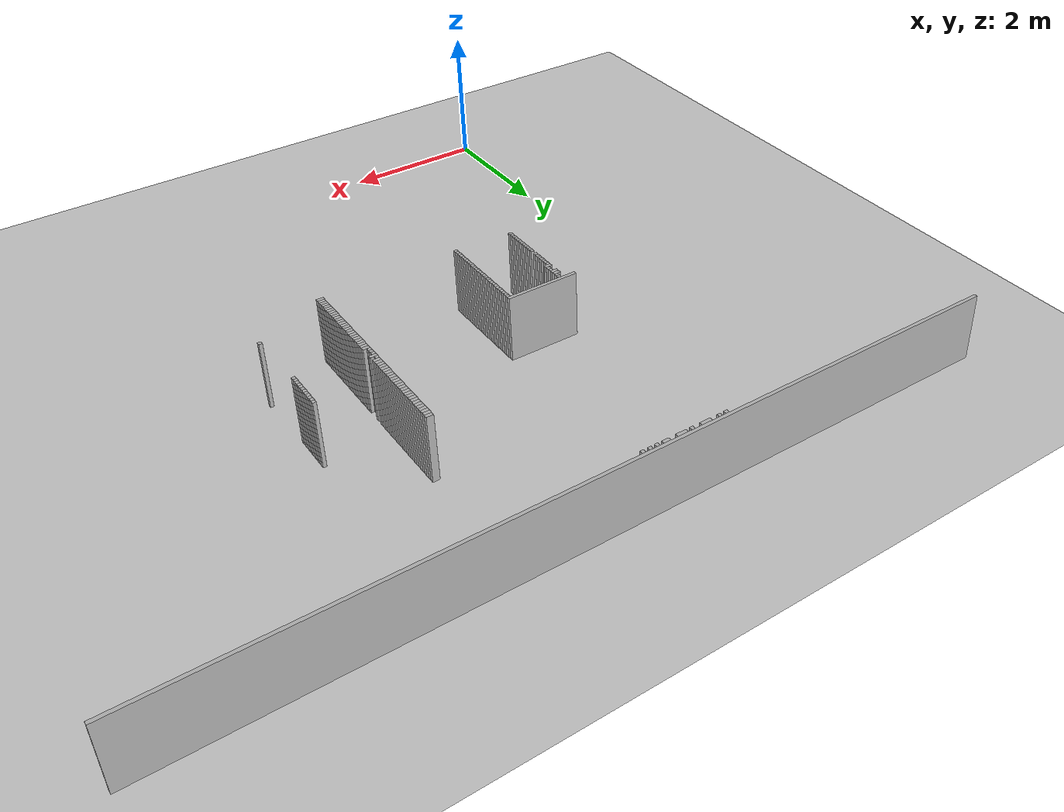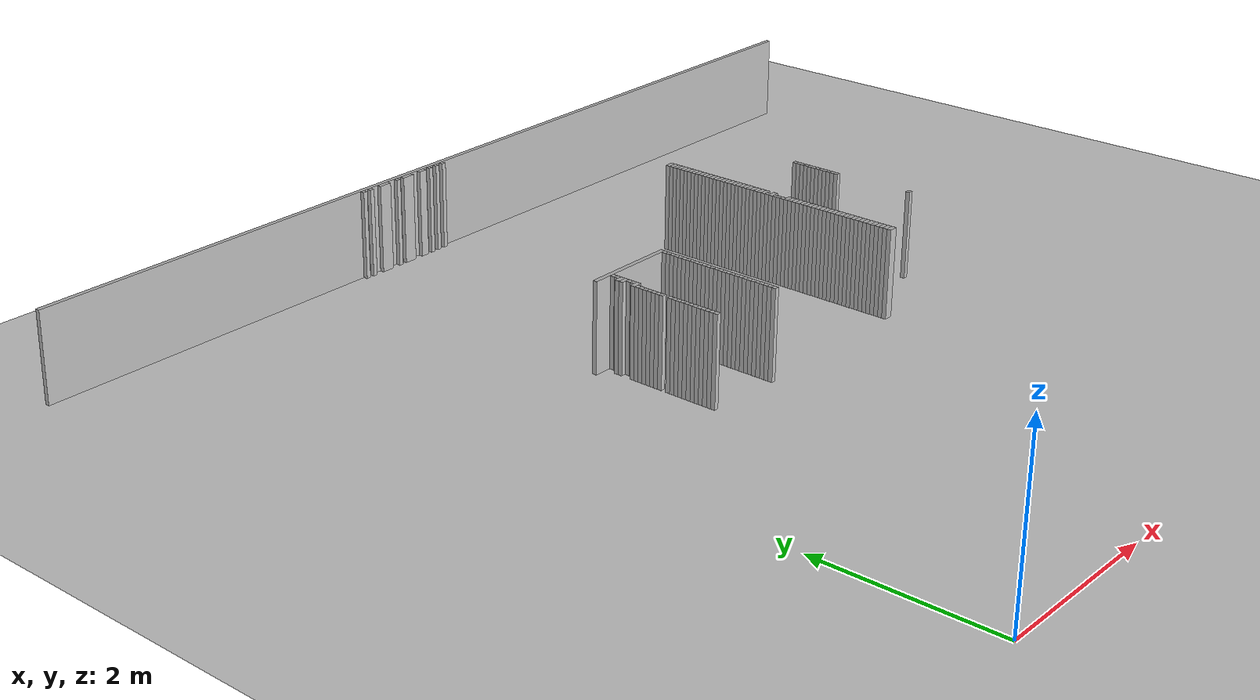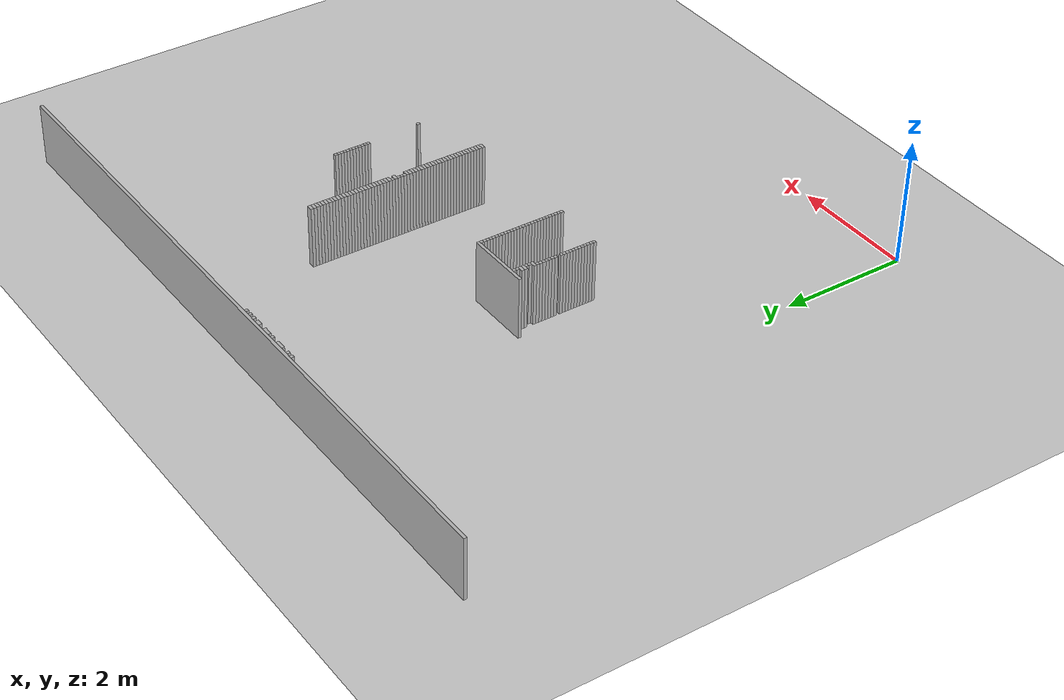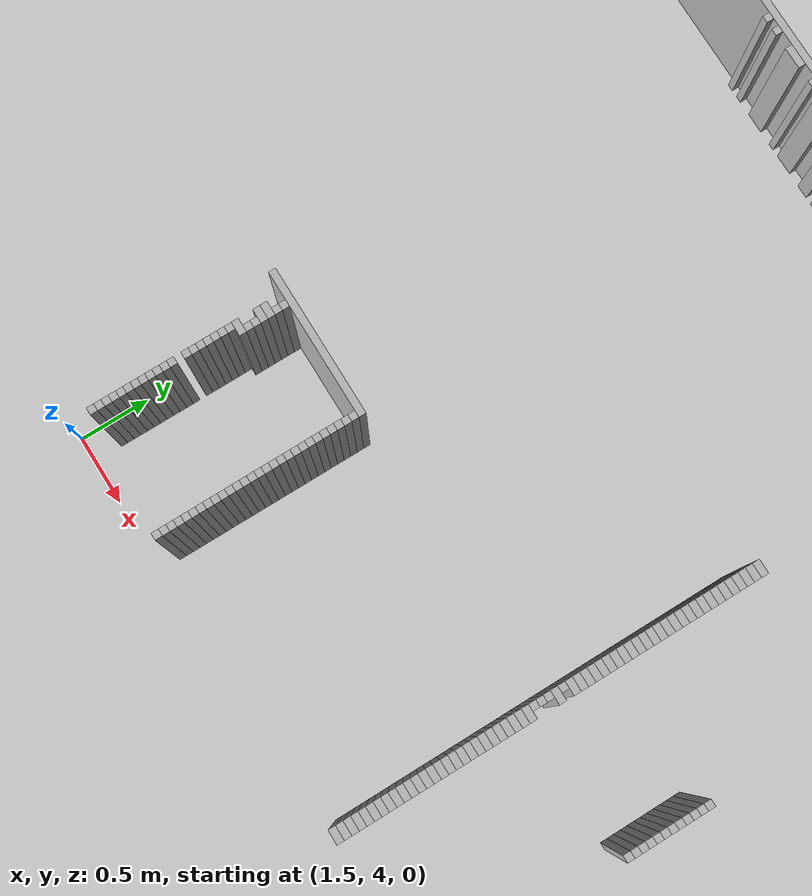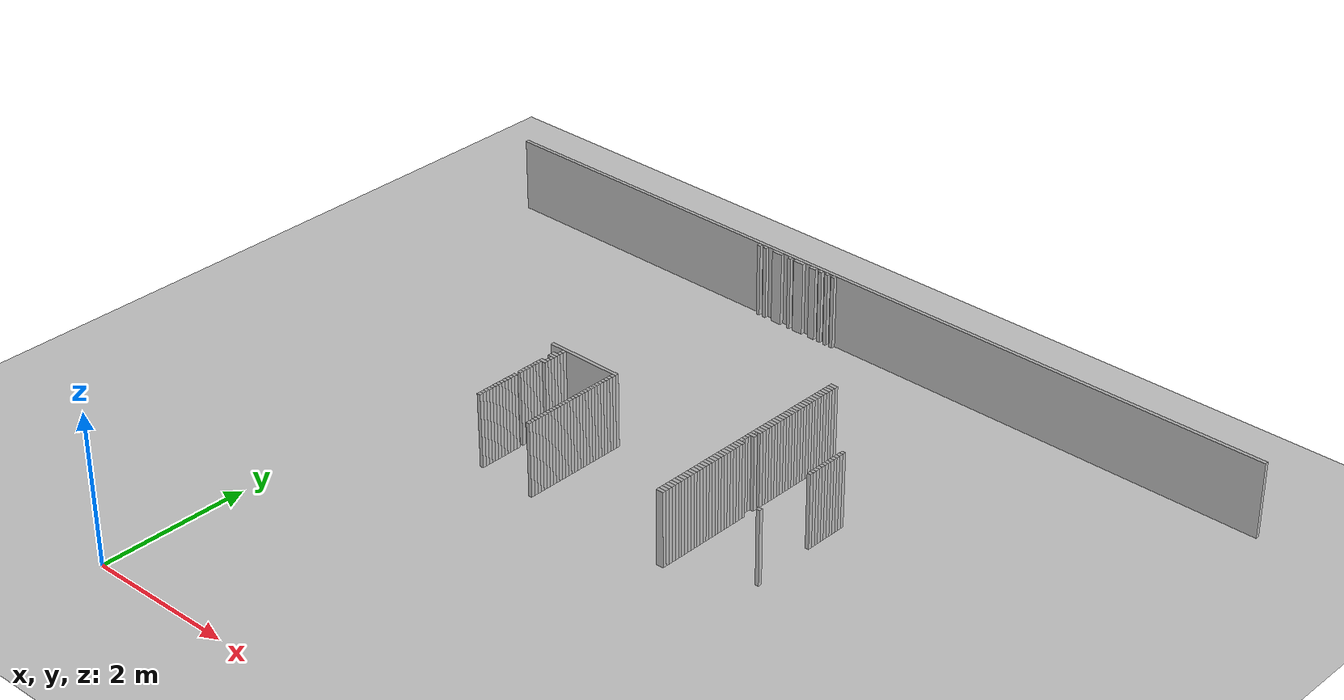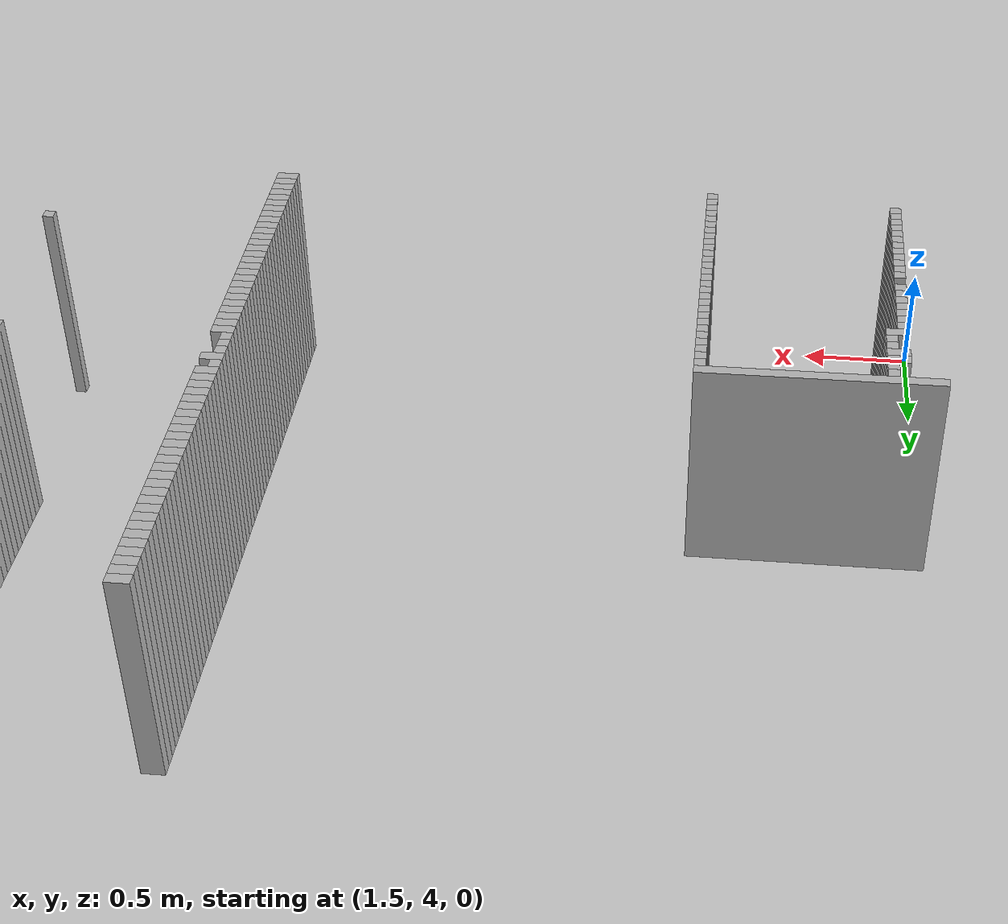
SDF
<sdf version="1.6">
 <world name="udh1_world">
  <include><uri>model://ground_plane</uri></include>
  <include><uri>model://sun</uri></include>
  <model name="wall_6">
   <static>true</static>
   <pose>3.3050000000000015 9.069999999999999 0.5 0 0 0</pose>
   <link name="link">
    <collision name="col"><geometry><box><size>11.55 0.05 1</size></box></geometry></collision>
    <visual name="vis"><geometry><box><size>11.55 0.05 1</size></box></geometry></visual>
   </link>
  </model>
  <model name="wall_32">
   <static>true</static>
   <pose>1.7050000000000018 9.020000000000001 0.5 0 0 0</pose>
   <link name="link">
    <collision name="col"><geometry><box><size>0.05 0.05 1</size></box></geometry></collision>
    <visual name="vis"><geometry><box><size>0.05 0.05 1</size></box></geometry></visual>
   </link>
  </model>
  <model name="wall_33">
   <static>true</static>
   <pose>1.8050000000000015 9.020000000000001 0.5 0 0 0</pose>
   <link name="link">
    <collision name="col"><geometry><box><size>0.05 0.05 1</size></box></geometry></collision>
    <visual name="vis"><geometry><box><size>0.05 0.05 1</size></box></geometry></visual>
   </link>
  </model>
  <model name="wall_34">
   <static>true</static>
   <pose>2.005000000000001 9.020000000000001 0.5 0 0 0</pose>
   <link name="link">
    <collision name="col"><geometry><box><size>0.15000000000000002 0.05 1</size></box></geometry></collision>
    <visual name="vis"><geometry><box><size>0.15000000000000002 0.05 1</size></box></geometry></visual>
   </link>
  </model>
  <model name="wall_35">
   <static>true</static>
   <pose>2.205000000000002 9.020000000000001 0.5 0 0 0</pose>
   <link name="link">
    <collision name="col"><geometry><box><size>0.05 0.05 1</size></box></geometry></collision>
    <visual name="vis"><geometry><box><size>0.05 0.05 1</size></box></geometry></visual>
   </link>
  </model>
  <model name="wall_36">
   <static>true</static>
   <pose>2.3550000000000004 9.020000000000001 0.5 0 0 0</pose>
   <link name="link">
    <collision name="col"><geometry><box><size>0.15000000000000002 0.05 1</size></box></geometry></collision>
    <visual name="vis"><geometry><box><size>0.15000000000000002 0.05 1</size></box></geometry></visual>
   </link>
  </model>
  <model name="wall_37">
   <static>true</static>
   <pose>2.580000000000002 9.020000000000001 0.5 0 0 0</pose>
   <link name="link">
    <collision name="col"><geometry><box><size>0.1 0.05 1</size></box></geometry></collision>
    <visual name="vis"><geometry><box><size>0.1 0.05 1</size></box></geometry></visual>
   </link>
  </model>
  <model name="wall_38">
   <static>true</static>
   <pose>2.705000000000002 9.020000000000001 0.5 0 0 0</pose>
   <link name="link">
    <collision name="col"><geometry><box><size>0.05 0.05 1</size></box></geometry></collision>
    <visual name="vis"><geometry><box><size>0.05 0.05 1</size></box></geometry></visual>
   </link>
  </model>
  <model name="wall_39">
   <static>true</static>
   <pose>2.8050000000000015 9.020000000000001 0.5 0 0 0</pose>
   <link name="link">
    <collision name="col"><geometry><box><size>0.05 0.05 1</size></box></geometry></collision>
    <visual name="vis"><geometry><box><size>0.05 0.05 1</size></box></geometry></visual>
   </link>
  </model>
  <model name="wall_40">
   <static>true</static>
   <pose>2.905000000000001 9.020000000000001 0.5 0 0 0</pose>
   <link name="link">
    <collision name="col"><geometry><box><size>0.05 0.05 1</size></box></geometry></collision>
    <visual name="vis"><geometry><box><size>0.05 0.05 1</size></box></geometry></visual>
   </link>
  </model>
  <model name="wall_204">
   <static>true</static>
   <pose>4.530000000000001 7.0699999999999985 0.5 0 0 0</pose>
   <link name="link">
    <collision name="col"><geometry><box><size>0.1 0.05 1</size></box></geometry></collision>
    <visual name="vis"><geometry><box><size>0.1 0.05 1</size></box></geometry></visual>
   </link>
  </model>
  <model name="wall_212">
   <static>true</static>
   <pose>4.530000000000001 7.020000000000001 0.5 0 0 0</pose>
   <link name="link">
    <collision name="col"><geometry><box><size>0.1 0.05 1</size></box></geometry></collision>
    <visual name="vis"><geometry><box><size>0.1 0.05 1</size></box></geometry></visual>
   </link>
  </model>
  <model name="wall_221">
   <static>true</static>
   <pose>4.530000000000001 6.970000000000001 0.5 0 0 0</pose>
   <link name="link">
    <collision name="col"><geometry><box><size>0.1 0.05 1</size></box></geometry></collision>
    <visual name="vis"><geometry><box><size>0.1 0.05 1</size></box></geometry></visual>
   </link>
  </model>
  <model name="wall_229">
   <static>true</static>
   <pose>4.530000000000001 6.92 0.5 0 0 0</pose>
   <link name="link">
    <collision name="col"><geometry><box><size>0.1 0.05 1</size></box></geometry></collision>
    <visual name="vis"><geometry><box><size>0.1 0.05 1</size></box></geometry></visual>
   </link>
  </model>
  <model name="wall_237">
   <static>true</static>
   <pose>4.530000000000001 6.869999999999999 0.5 0 0 0</pose>
   <link name="link">
    <collision name="col"><geometry><box><size>0.1 0.05 1</size></box></geometry></collision>
    <visual name="vis"><geometry><box><size>0.1 0.05 1</size></box></geometry></visual>
   </link>
  </model>
  <model name="wall_245">
   <static>true</static>
   <pose>4.530000000000001 6.82 0.5 0 0 0</pose>
   <link name="link">
    <collision name="col"><geometry><box><size>0.1 0.05 1</size></box></geometry></collision>
    <visual name="vis"><geometry><box><size>0.1 0.05 1</size></box></geometry></visual>
   </link>
  </model>
  <model name="wall_253">
   <static>true</static>
   <pose>4.530000000000001 6.77 0.5 0 0 0</pose>
   <link name="link">
    <collision name="col"><geometry><box><size>0.1 0.05 1</size></box></geometry></collision>
    <visual name="vis"><geometry><box><size>0.1 0.05 1</size></box></geometry></visual>
   </link>
  </model>
  <model name="wall_261">
   <static>true</static>
   <pose>4.530000000000001 6.720000000000001 0.5 0 0 0</pose>
   <link name="link">
    <collision name="col"><geometry><box><size>0.1 0.05 1</size></box></geometry></collision>
    <visual name="vis"><geometry><box><size>0.1 0.05 1</size></box></geometry></visual>
   </link>
  </model>
  <model name="wall_269">
   <static>true</static>
   <pose>4.530000000000001 6.67 0.5 0 0 0</pose>
   <link name="link">
    <collision name="col"><geometry><box><size>0.1 0.05 1</size></box></geometry></collision>
    <visual name="vis"><geometry><box><size>0.1 0.05 1</size></box></geometry></visual>
   </link>
  </model>
  <model name="wall_282">
   <static>true</static>
   <pose>4.530000000000001 6.619999999999999 0.5 0 0 0</pose>
   <link name="link">
    <collision name="col"><geometry><box><size>0.1 0.05 1</size></box></geometry></collision>
    <visual name="vis"><geometry><box><size>0.1 0.05 1</size></box></geometry></visual>
   </link>
  </model>
  <model name="wall_290">
   <static>true</static>
   <pose>4.530000000000001 6.57 0.5 0 0 0</pose>
   <link name="link">
    <collision name="col"><geometry><box><size>0.1 0.05 1</size></box></geometry></collision>
    <visual name="vis"><geometry><box><size>0.1 0.05 1</size></box></geometry></visual>
   </link>
  </model>
  <model name="wall_296">
   <static>true</static>
   <pose>4.530000000000001 6.52 0.5 0 0 0</pose>
   <link name="link">
    <collision name="col"><geometry><box><size>0.1 0.05 1</size></box></geometry></collision>
    <visual name="vis"><geometry><box><size>0.1 0.05 1</size></box></geometry></visual>
   </link>
  </model>
  <model name="wall_302">
   <static>true</static>
   <pose>4.530000000000001 6.470000000000001 0.5 0 0 0</pose>
   <link name="link">
    <collision name="col"><geometry><box><size>0.1 0.05 1</size></box></geometry></collision>
    <visual name="vis"><geometry><box><size>0.1 0.05 1</size></box></geometry></visual>
   </link>
  </model>
  <model name="wall_308">
   <static>true</static>
   <pose>4.530000000000001 6.42 0.5 0 0 0</pose>
   <link name="link">
    <collision name="col"><geometry><box><size>0.1 0.05 1</size></box></geometry></collision>
    <visual name="vis"><geometry><box><size>0.1 0.05 1</size></box></geometry></visual>
   </link>
  </model>
  <model name="wall_314">
   <static>true</static>
   <pose>4.530000000000001 6.369999999999999 0.5 0 0 0</pose>
   <link name="link">
    <collision name="col"><geometry><box><size>0.1 0.05 1</size></box></geometry></collision>
    <visual name="vis"><geometry><box><size>0.1 0.05 1</size></box></geometry></visual>
   </link>
  </model>
  <model name="wall_320">
   <static>true</static>
   <pose>4.530000000000001 6.32 0.5 0 0 0</pose>
   <link name="link">
    <collision name="col"><geometry><box><size>0.1 0.05 1</size></box></geometry></collision>
    <visual name="vis"><geometry><box><size>0.1 0.05 1</size></box></geometry></visual>
   </link>
  </model>
  <model name="wall_326">
   <static>true</static>
   <pose>4.530000000000001 6.27 0.5 0 0 0</pose>
   <link name="link">
    <collision name="col"><geometry><box><size>0.1 0.05 1</size></box></geometry></collision>
    <visual name="vis"><geometry><box><size>0.1 0.05 1</size></box></geometry></visual>
   </link>
  </model>
  <model name="wall_332">
   <static>true</static>
   <pose>4.530000000000001 6.220000000000001 0.5 0 0 0</pose>
   <link name="link">
    <collision name="col"><geometry><box><size>0.1 0.05 1</size></box></geometry></collision>
    <visual name="vis"><geometry><box><size>0.1 0.05 1</size></box></geometry></visual>
   </link>
  </model>
  <model name="wall_338">
   <static>true</static>
   <pose>4.530000000000001 6.17 0.5 0 0 0</pose>
   <link name="link">
    <collision name="col"><geometry><box><size>0.1 0.05 1</size></box></geometry></collision>
    <visual name="vis"><geometry><box><size>0.1 0.05 1</size></box></geometry></visual>
   </link>
  </model>
  <model name="wall_344">
   <static>true</static>
   <pose>4.530000000000001 6.119999999999999 0.5 0 0 0</pose>
   <link name="link">
    <collision name="col"><geometry><box><size>0.1 0.05 1</size></box></geometry></collision>
    <visual name="vis"><geometry><box><size>0.1 0.05 1</size></box></geometry></visual>
   </link>
  </model>
  <model name="wall_358">
   <static>true</static>
   <pose>4.530000000000001 6.07 0.5 0 0 0</pose>
   <link name="link">
    <collision name="col"><geometry><box><size>0.1 0.05 1</size></box></geometry></collision>
    <visual name="vis"><geometry><box><size>0.1 0.05 1</size></box></geometry></visual>
   </link>
  </model>
  <model name="wall_359">
   <static>true</static>
   <pose>5.505000000000001 6.07 0.5 0 0 0</pose>
   <link name="link">
    <collision name="col"><geometry><box><size>0.05 0.05 1</size></box></geometry></collision>
    <visual name="vis"><geometry><box><size>0.05 0.05 1</size></box></geometry></visual>
   </link>
  </model>
  <model name="wall_364">
   <static>true</static>
   <pose>4.530000000000001 6.02 0.5 0 0 0</pose>
   <link name="link">
    <collision name="col"><geometry><box><size>0.1 0.05 1</size></box></geometry></collision>
    <visual name="vis"><geometry><box><size>0.1 0.05 1</size></box></geometry></visual>
   </link>
  </model>
  <model name="wall_365">
   <static>true</static>
   <pose>5.505000000000001 6.02 0.5 0 0 0</pose>
   <link name="link">
    <collision name="col"><geometry><box><size>0.05 0.05 1</size></box></geometry></collision>
    <visual name="vis"><geometry><box><size>0.05 0.05 1</size></box></geometry></visual>
   </link>
  </model>
  <model name="wall_370">
   <static>true</static>
   <pose>4.530000000000001 5.970000000000001 0.5 0 0 0</pose>
   <link name="link">
    <collision name="col"><geometry><box><size>0.1 0.05 1</size></box></geometry></collision>
    <visual name="vis"><geometry><box><size>0.1 0.05 1</size></box></geometry></visual>
   </link>
  </model>
  <model name="wall_371">
   <static>true</static>
   <pose>5.505000000000001 5.970000000000001 0.5 0 0 0</pose>
   <link name="link">
    <collision name="col"><geometry><box><size>0.05 0.05 1</size></box></geometry></collision>
    <visual name="vis"><geometry><box><size>0.05 0.05 1</size></box></geometry></visual>
   </link>
  </model>
  <model name="wall_376">
   <static>true</static>
   <pose>4.530000000000001 5.92 0.5 0 0 0</pose>
   <link name="link">
    <collision name="col"><geometry><box><size>0.1 0.05 1</size></box></geometry></collision>
    <visual name="vis"><geometry><box><size>0.1 0.05 1</size></box></geometry></visual>
   </link>
  </model>
  <model name="wall_377">
   <static>true</static>
   <pose>5.505000000000001 5.92 0.5 0 0 0</pose>
   <link name="link">
    <collision name="col"><geometry><box><size>0.05 0.05 1</size></box></geometry></collision>
    <visual name="vis"><geometry><box><size>0.05 0.05 1</size></box></geometry></visual>
   </link>
  </model>
  <model name="wall_382">
   <static>true</static>
   <pose>4.530000000000001 5.869999999999999 0.5 0 0 0</pose>
   <link name="link">
    <collision name="col"><geometry><box><size>0.1 0.05 1</size></box></geometry></collision>
    <visual name="vis"><geometry><box><size>0.1 0.05 1</size></box></geometry></visual>
   </link>
  </model>
  <model name="wall_383">
   <static>true</static>
   <pose>5.505000000000001 5.869999999999999 0.5 0 0 0</pose>
   <link name="link">
    <collision name="col"><geometry><box><size>0.05 0.05 1</size></box></geometry></collision>
    <visual name="vis"><geometry><box><size>0.05 0.05 1</size></box></geometry></visual>
   </link>
  </model>
  <model name="wall_388">
   <static>true</static>
   <pose>4.530000000000001 5.82 0.5 0 0 0</pose>
   <link name="link">
    <collision name="col"><geometry><box><size>0.1 0.05 1</size></box></geometry></collision>
    <visual name="vis"><geometry><box><size>0.1 0.05 1</size></box></geometry></visual>
   </link>
  </model>
  <model name="wall_389">
   <static>true</static>
   <pose>5.505000000000001 5.82 0.5 0 0 0</pose>
   <link name="link">
    <collision name="col"><geometry><box><size>0.05 0.05 1</size></box></geometry></collision>
    <visual name="vis"><geometry><box><size>0.05 0.05 1</size></box></geometry></visual>
   </link>
  </model>
  <model name="wall_394">
   <static>true</static>
   <pose>4.530000000000001 5.77 0.5 0 0 0</pose>
   <link name="link">
    <collision name="col"><geometry><box><size>0.1 0.05 1</size></box></geometry></collision>
    <visual name="vis"><geometry><box><size>0.1 0.05 1</size></box></geometry></visual>
   </link>
  </model>
  <model name="wall_395">
   <static>true</static>
   <pose>5.505000000000001 5.77 0.5 0 0 0</pose>
   <link name="link">
    <collision name="col"><geometry><box><size>0.05 0.05 1</size></box></geometry></collision>
    <visual name="vis"><geometry><box><size>0.05 0.05 1</size></box></geometry></visual>
   </link>
  </model>
  <model name="wall_400">
   <static>true</static>
   <pose>4.505000000000001 5.720000000000001 0.5 0 0 0</pose>
   <link name="link">
    <collision name="col"><geometry><box><size>0.05 0.05 1</size></box></geometry></collision>
    <visual name="vis"><geometry><box><size>0.05 0.05 1</size></box></geometry></visual>
   </link>
  </model>
  <model name="wall_401">
   <static>true</static>
   <pose>5.505000000000001 5.720000000000001 0.5 0 0 0</pose>
   <link name="link">
    <collision name="col"><geometry><box><size>0.05 0.05 1</size></box></geometry></collision>
    <visual name="vis"><geometry><box><size>0.05 0.05 1</size></box></geometry></visual>
   </link>
  </model>
  <model name="wall_406">
   <static>true</static>
   <pose>4.530000000000001 5.67 0.5 0 0 0</pose>
   <link name="link">
    <collision name="col"><geometry><box><size>0.1 0.05 1</size></box></geometry></collision>
    <visual name="vis"><geometry><box><size>0.1 0.05 1</size></box></geometry></visual>
   </link>
  </model>
  <model name="wall_407">
   <static>true</static>
   <pose>5.505000000000001 5.67 0.5 0 0 0</pose>
   <link name="link">
    <collision name="col"><geometry><box><size>0.05 0.05 1</size></box></geometry></collision>
    <visual name="vis"><geometry><box><size>0.05 0.05 1</size></box></geometry></visual>
   </link>
  </model>
  <model name="wall_412">
   <static>true</static>
   <pose>4.505000000000001 5.619999999999999 0.5 0 0 0</pose>
   <link name="link">
    <collision name="col"><geometry><box><size>0.05 0.05 1</size></box></geometry></collision>
    <visual name="vis"><geometry><box><size>0.05 0.05 1</size></box></geometry></visual>
   </link>
  </model>
  <model name="wall_413">
   <static>true</static>
   <pose>5.505000000000001 5.619999999999999 0.5 0 0 0</pose>
   <link name="link">
    <collision name="col"><geometry><box><size>0.05 0.05 1</size></box></geometry></collision>
    <visual name="vis"><geometry><box><size>0.05 0.05 1</size></box></geometry></visual>
   </link>
  </model>
  <model name="wall_418">
   <static>true</static>
   <pose>2.005000000000001 5.57 0.5 0 0 0</pose>
   <link name="link">
    <collision name="col"><geometry><box><size>1.05 0.05 1</size></box></geometry></collision>
    <visual name="vis"><geometry><box><size>1.05 0.05 1</size></box></geometry></visual>
   </link>
  </model>
  <model name="wall_419">
   <static>true</static>
   <pose>4.505000000000001 5.57 0.5 0 0 0</pose>
   <link name="link">
    <collision name="col"><geometry><box><size>0.05 0.05 1</size></box></geometry></collision>
    <visual name="vis"><geometry><box><size>0.05 0.05 1</size></box></geometry></visual>
   </link>
  </model>
  <model name="wall_420">
   <static>true</static>
   <pose>5.505000000000001 5.57 0.5 0 0 0</pose>
   <link name="link">
    <collision name="col"><geometry><box><size>0.05 0.05 1</size></box></geometry></collision>
    <visual name="vis"><geometry><box><size>0.05 0.05 1</size></box></geometry></visual>
   </link>
  </model>
  <model name="wall_426">
   <static>true</static>
   <pose>1.7050000000000018 5.52 0.5 0 0 0</pose>
   <link name="link">
    <collision name="col"><geometry><box><size>0.05 0.05 1</size></box></geometry></collision>
    <visual name="vis"><geometry><box><size>0.05 0.05 1</size></box></geometry></visual>
   </link>
  </model>
  <model name="wall_427">
   <static>true</static>
   <pose>2.505000000000001 5.52 0.5 0 0 0</pose>
   <link name="link">
    <collision name="col"><geometry><box><size>0.05 0.05 1</size></box></geometry></collision>
    <visual name="vis"><geometry><box><size>0.05 0.05 1</size></box></geometry></visual>
   </link>
  </model>
  <model name="wall_428">
   <static>true</static>
   <pose>4.505000000000001 5.52 0.5 0 0 0</pose>
   <link name="link">
    <collision name="col"><geometry><box><size>0.05 0.05 1</size></box></geometry></collision>
    <visual name="vis"><geometry><box><size>0.05 0.05 1</size></box></geometry></visual>
   </link>
  </model>
  <model name="wall_429">
   <static>true</static>
   <pose>5.505000000000001 5.52 0.5 0 0 0</pose>
   <link name="link">
    <collision name="col"><geometry><box><size>0.05 0.05 1</size></box></geometry></collision>
    <visual name="vis"><geometry><box><size>0.05 0.05 1</size></box></geometry></visual>
   </link>
  </model>
  <model name="wall_435">
   <static>true</static>
   <pose>1.7050000000000018 5.470000000000001 0.5 0 0 0</pose>
   <link name="link">
    <collision name="col"><geometry><box><size>0.05 0.05 1</size></box></geometry></collision>
    <visual name="vis"><geometry><box><size>0.05 0.05 1</size></box></geometry></visual>
   </link>
  </model>
  <model name="wall_436">
   <static>true</static>
   <pose>2.505000000000001 5.470000000000001 0.5 0 0 0</pose>
   <link name="link">
    <collision name="col"><geometry><box><size>0.05 0.05 1</size></box></geometry></collision>
    <visual name="vis"><geometry><box><size>0.05 0.05 1</size></box></geometry></visual>
   </link>
  </model>
  <model name="wall_437">
   <static>true</static>
   <pose>4.530000000000001 5.470000000000001 0.5 0 0 0</pose>
   <link name="link">
    <collision name="col"><geometry><box><size>0.1 0.05 1</size></box></geometry></collision>
    <visual name="vis"><geometry><box><size>0.1 0.05 1</size></box></geometry></visual>
   </link>
  </model>
  <model name="wall_444">
   <static>true</static>
   <pose>1.6800000000000015 5.42 0.5 0 0 0</pose>
   <link name="link">
    <collision name="col"><geometry><box><size>0.1 0.05 1</size></box></geometry></collision>
    <visual name="vis"><geometry><box><size>0.1 0.05 1</size></box></geometry></visual>
   </link>
  </model>
  <model name="wall_445">
   <static>true</static>
   <pose>2.505000000000001 5.42 0.5 0 0 0</pose>
   <link name="link">
    <collision name="col"><geometry><box><size>0.05 0.05 1</size></box></geometry></collision>
    <visual name="vis"><geometry><box><size>0.05 0.05 1</size></box></geometry></visual>
   </link>
  </model>
  <model name="wall_446">
   <static>true</static>
   <pose>4.530000000000001 5.42 0.5 0 0 0</pose>
   <link name="link">
    <collision name="col"><geometry><box><size>0.1 0.05 1</size></box></geometry></collision>
    <visual name="vis"><geometry><box><size>0.1 0.05 1</size></box></geometry></visual>
   </link>
  </model>
  <model name="wall_453">
   <static>true</static>
   <pose>1.6800000000000015 5.369999999999999 0.5 0 0 0</pose>
   <link name="link">
    <collision name="col"><geometry><box><size>0.1 0.05 1</size></box></geometry></collision>
    <visual name="vis"><geometry><box><size>0.1 0.05 1</size></box></geometry></visual>
   </link>
  </model>
  <model name="wall_454">
   <static>true</static>
   <pose>2.505000000000001 5.369999999999999 0.5 0 0 0</pose>
   <link name="link">
    <collision name="col"><geometry><box><size>0.05 0.05 1</size></box></geometry></collision>
    <visual name="vis"><geometry><box><size>0.05 0.05 1</size></box></geometry></visual>
   </link>
  </model>
  <model name="wall_455">
   <static>true</static>
   <pose>4.530000000000001 5.369999999999999 0.5 0 0 0</pose>
   <link name="link">
    <collision name="col"><geometry><box><size>0.1 0.05 1</size></box></geometry></collision>
    <visual name="vis"><geometry><box><size>0.1 0.05 1</size></box></geometry></visual>
   </link>
  </model>
  <model name="wall_462">
   <static>true</static>
   <pose>1.7050000000000018 5.32 0.5 0 0 0</pose>
   <link name="link">
    <collision name="col"><geometry><box><size>0.05 0.05 1</size></box></geometry></collision>
    <visual name="vis"><geometry><box><size>0.05 0.05 1</size></box></geometry></visual>
   </link>
  </model>
  <model name="wall_463">
   <static>true</static>
   <pose>2.505000000000001 5.32 0.5 0 0 0</pose>
   <link name="link">
    <collision name="col"><geometry><box><size>0.05 0.05 1</size></box></geometry></collision>
    <visual name="vis"><geometry><box><size>0.05 0.05 1</size></box></geometry></visual>
   </link>
  </model>
  <model name="wall_464">
   <static>true</static>
   <pose>4.530000000000001 5.32 0.5 0 0 0</pose>
   <link name="link">
    <collision name="col"><geometry><box><size>0.1 0.05 1</size></box></geometry></collision>
    <visual name="vis"><geometry><box><size>0.1 0.05 1</size></box></geometry></visual>
   </link>
  </model>
  <model name="wall_471">
   <static>true</static>
   <pose>1.7050000000000018 5.27 0.5 0 0 0</pose>
   <link name="link">
    <collision name="col"><geometry><box><size>0.05 0.05 1</size></box></geometry></collision>
    <visual name="vis"><geometry><box><size>0.05 0.05 1</size></box></geometry></visual>
   </link>
  </model>
  <model name="wall_472">
   <static>true</static>
   <pose>2.505000000000001 5.27 0.5 0 0 0</pose>
   <link name="link">
    <collision name="col"><geometry><box><size>0.05 0.05 1</size></box></geometry></collision>
    <visual name="vis"><geometry><box><size>0.05 0.05 1</size></box></geometry></visual>
   </link>
  </model>
  <model name="wall_473">
   <static>true</static>
   <pose>4.530000000000001 5.27 0.5 0 0 0</pose>
   <link name="link">
    <collision name="col"><geometry><box><size>0.1 0.05 1</size></box></geometry></collision>
    <visual name="vis"><geometry><box><size>0.1 0.05 1</size></box></geometry></visual>
   </link>
  </model>
  <model name="wall_480">
   <static>true</static>
   <pose>1.6800000000000015 5.220000000000001 0.5 0 0 0</pose>
   <link name="link">
    <collision name="col"><geometry><box><size>0.1 0.05 1</size></box></geometry></collision>
    <visual name="vis"><geometry><box><size>0.1 0.05 1</size></box></geometry></visual>
   </link>
  </model>
  <model name="wall_481">
   <static>true</static>
   <pose>2.505000000000001 5.220000000000001 0.5 0 0 0</pose>
   <link name="link">
    <collision name="col"><geometry><box><size>0.05 0.05 1</size></box></geometry></collision>
    <visual name="vis"><geometry><box><size>0.05 0.05 1</size></box></geometry></visual>
   </link>
  </model>
  <model name="wall_482">
   <static>true</static>
   <pose>4.530000000000001 5.220000000000001 0.5 0 0 0</pose>
   <link name="link">
    <collision name="col"><geometry><box><size>0.1 0.05 1</size></box></geometry></collision>
    <visual name="vis"><geometry><box><size>0.1 0.05 1</size></box></geometry></visual>
   </link>
  </model>
  <model name="wall_489">
   <static>true</static>
   <pose>1.6550000000000011 5.17 0.5 0 0 0</pose>
   <link name="link">
    <collision name="col"><geometry><box><size>0.05 0.05 1</size></box></geometry></collision>
    <visual name="vis"><geometry><box><size>0.05 0.05 1</size></box></geometry></visual>
   </link>
  </model>
  <model name="wall_490">
   <static>true</static>
   <pose>2.505000000000001 5.17 0.5 0 0 0</pose>
   <link name="link">
    <collision name="col"><geometry><box><size>0.05 0.05 1</size></box></geometry></collision>
    <visual name="vis"><geometry><box><size>0.05 0.05 1</size></box></geometry></visual>
   </link>
  </model>
  <model name="wall_491">
   <static>true</static>
   <pose>4.530000000000001 5.17 0.5 0 0 0</pose>
   <link name="link">
    <collision name="col"><geometry><box><size>0.1 0.05 1</size></box></geometry></collision>
    <visual name="vis"><geometry><box><size>0.1 0.05 1</size></box></geometry></visual>
   </link>
  </model>
  <model name="wall_498">
   <static>true</static>
   <pose>1.6550000000000011 5.119999999999999 0.5 0 0 0</pose>
   <link name="link">
    <collision name="col"><geometry><box><size>0.05 0.05 1</size></box></geometry></collision>
    <visual name="vis"><geometry><box><size>0.05 0.05 1</size></box></geometry></visual>
   </link>
  </model>
  <model name="wall_499">
   <static>true</static>
   <pose>2.505000000000001 5.119999999999999 0.5 0 0 0</pose>
   <link name="link">
    <collision name="col"><geometry><box><size>0.05 0.05 1</size></box></geometry></collision>
    <visual name="vis"><geometry><box><size>0.05 0.05 1</size></box></geometry></visual>
   </link>
  </model>
  <model name="wall_500">
   <static>true</static>
   <pose>4.530000000000001 5.119999999999999 0.5 0 0 0</pose>
   <link name="link">
    <collision name="col"><geometry><box><size>0.1 0.05 1</size></box></geometry></collision>
    <visual name="vis"><geometry><box><size>0.1 0.05 1</size></box></geometry></visual>
   </link>
  </model>
  <model name="wall_507">
   <static>true</static>
   <pose>1.6550000000000011 5.07 0.5 0 0 0</pose>
   <link name="link">
    <collision name="col"><geometry><box><size>0.05 0.05 1</size></box></geometry></collision>
    <visual name="vis"><geometry><box><size>0.05 0.05 1</size></box></geometry></visual>
   </link>
  </model>
  <model name="wall_508">
   <static>true</static>
   <pose>2.505000000000001 5.07 0.5 0 0 0</pose>
   <link name="link">
    <collision name="col"><geometry><box><size>0.05 0.05 1</size></box></geometry></collision>
    <visual name="vis"><geometry><box><size>0.05 0.05 1</size></box></geometry></visual>
   </link>
  </model>
  <model name="wall_509">
   <static>true</static>
   <pose>4.530000000000001 5.07 0.5 0 0 0</pose>
   <link name="link">
    <collision name="col"><geometry><box><size>0.1 0.05 1</size></box></geometry></collision>
    <visual name="vis"><geometry><box><size>0.1 0.05 1</size></box></geometry></visual>
   </link>
  </model>
  <model name="wall_516">
   <static>true</static>
   <pose>1.6550000000000011 5.02 0.5 0 0 0</pose>
   <link name="link">
    <collision name="col"><geometry><box><size>0.05 0.05 1</size></box></geometry></collision>
    <visual name="vis"><geometry><box><size>0.05 0.05 1</size></box></geometry></visual>
   </link>
  </model>
  <model name="wall_517">
   <static>true</static>
   <pose>2.505000000000001 5.02 0.5 0 0 0</pose>
   <link name="link">
    <collision name="col"><geometry><box><size>0.05 0.05 1</size></box></geometry></collision>
    <visual name="vis"><geometry><box><size>0.05 0.05 1</size></box></geometry></visual>
   </link>
  </model>
  <model name="wall_518">
   <static>true</static>
   <pose>4.530000000000001 5.02 0.5 0 0 0</pose>
   <link name="link">
    <collision name="col"><geometry><box><size>0.1 0.05 1</size></box></geometry></collision>
    <visual name="vis"><geometry><box><size>0.1 0.05 1</size></box></geometry></visual>
   </link>
  </model>
  <model name="wall_525">
   <static>true</static>
   <pose>1.6550000000000011 4.970000000000001 0.5 0 0 0</pose>
   <link name="link">
    <collision name="col"><geometry><box><size>0.05 0.05 1</size></box></geometry></collision>
    <visual name="vis"><geometry><box><size>0.05 0.05 1</size></box></geometry></visual>
   </link>
  </model>
  <model name="wall_526">
   <static>true</static>
   <pose>2.505000000000001 4.970000000000001 0.5 0 0 0</pose>
   <link name="link">
    <collision name="col"><geometry><box><size>0.05 0.05 1</size></box></geometry></collision>
    <visual name="vis"><geometry><box><size>0.05 0.05 1</size></box></geometry></visual>
   </link>
  </model>
  <model name="wall_527">
   <static>true</static>
   <pose>4.530000000000001 4.970000000000001 0.5 0 0 0</pose>
   <link name="link">
    <collision name="col"><geometry><box><size>0.1 0.05 1</size></box></geometry></collision>
    <visual name="vis"><geometry><box><size>0.1 0.05 1</size></box></geometry></visual>
   </link>
  </model>
  <model name="wall_534">
   <static>true</static>
   <pose>1.6550000000000011 4.92 0.5 0 0 0</pose>
   <link name="link">
    <collision name="col"><geometry><box><size>0.05 0.05 1</size></box></geometry></collision>
    <visual name="vis"><geometry><box><size>0.05 0.05 1</size></box></geometry></visual>
   </link>
  </model>
  <model name="wall_535">
   <static>true</static>
   <pose>2.505000000000001 4.92 0.5 0 0 0</pose>
   <link name="link">
    <collision name="col"><geometry><box><size>0.05 0.05 1</size></box></geometry></collision>
    <visual name="vis"><geometry><box><size>0.05 0.05 1</size></box></geometry></visual>
   </link>
  </model>
  <model name="wall_536">
   <static>true</static>
   <pose>4.530000000000001 4.92 0.5 0 0 0</pose>
   <link name="link">
    <collision name="col"><geometry><box><size>0.1 0.05 1</size></box></geometry></collision>
    <visual name="vis"><geometry><box><size>0.1 0.05 1</size></box></geometry></visual>
   </link>
  </model>
  <model name="wall_543">
   <static>true</static>
   <pose>1.6550000000000011 4.869999999999999 0.5 0 0 0</pose>
   <link name="link">
    <collision name="col"><geometry><box><size>0.05 0.05 1</size></box></geometry></collision>
    <visual name="vis"><geometry><box><size>0.05 0.05 1</size></box></geometry></visual>
   </link>
  </model>
  <model name="wall_544">
   <static>true</static>
   <pose>2.505000000000001 4.869999999999999 0.5 0 0 0</pose>
   <link name="link">
    <collision name="col"><geometry><box><size>0.05 0.05 1</size></box></geometry></collision>
    <visual name="vis"><geometry><box><size>0.05 0.05 1</size></box></geometry></visual>
   </link>
  </model>
  <model name="wall_545">
   <static>true</static>
   <pose>4.530000000000001 4.869999999999999 0.5 0 0 0</pose>
   <link name="link">
    <collision name="col"><geometry><box><size>0.1 0.05 1</size></box></geometry></collision>
    <visual name="vis"><geometry><box><size>0.1 0.05 1</size></box></geometry></visual>
   </link>
  </model>
  <model name="wall_552">
   <static>true</static>
   <pose>2.505000000000001 4.82 0.5 0 0 0</pose>
   <link name="link">
    <collision name="col"><geometry><box><size>0.05 0.05 1</size></box></geometry></collision>
    <visual name="vis"><geometry><box><size>0.05 0.05 1</size></box></geometry></visual>
   </link>
  </model>
  <model name="wall_553">
   <static>true</static>
   <pose>4.530000000000001 4.82 0.5 0 0 0</pose>
   <link name="link">
    <collision name="col"><geometry><box><size>0.1 0.05 1</size></box></geometry></collision>
    <visual name="vis"><geometry><box><size>0.1 0.05 1</size></box></geometry></visual>
   </link>
  </model>
  <model name="wall_560">
   <static>true</static>
   <pose>1.6550000000000011 4.77 0.5 0 0 0</pose>
   <link name="link">
    <collision name="col"><geometry><box><size>0.05 0.05 1</size></box></geometry></collision>
    <visual name="vis"><geometry><box><size>0.05 0.05 1</size></box></geometry></visual>
   </link>
  </model>
  <model name="wall_561">
   <static>true</static>
   <pose>2.505000000000001 4.77 0.5 0 0 0</pose>
   <link name="link">
    <collision name="col"><geometry><box><size>0.05 0.05 1</size></box></geometry></collision>
    <visual name="vis"><geometry><box><size>0.05 0.05 1</size></box></geometry></visual>
   </link>
  </model>
  <model name="wall_562">
   <static>true</static>
   <pose>4.530000000000001 4.77 0.5 0 0 0</pose>
   <link name="link">
    <collision name="col"><geometry><box><size>0.1 0.05 1</size></box></geometry></collision>
    <visual name="vis"><geometry><box><size>0.1 0.05 1</size></box></geometry></visual>
   </link>
  </model>
  <model name="wall_569">
   <static>true</static>
   <pose>1.6550000000000011 4.720000000000001 0.5 0 0 0</pose>
   <link name="link">
    <collision name="col"><geometry><box><size>0.05 0.05 1</size></box></geometry></collision>
    <visual name="vis"><geometry><box><size>0.05 0.05 1</size></box></geometry></visual>
   </link>
  </model>
  <model name="wall_570">
   <static>true</static>
   <pose>2.505000000000001 4.720000000000001 0.5 0 0 0</pose>
   <link name="link">
    <collision name="col"><geometry><box><size>0.05 0.05 1</size></box></geometry></collision>
    <visual name="vis"><geometry><box><size>0.05 0.05 1</size></box></geometry></visual>
   </link>
  </model>
  <model name="wall_571">
   <static>true</static>
   <pose>4.530000000000001 4.720000000000001 0.5 0 0 0</pose>
   <link name="link">
    <collision name="col"><geometry><box><size>0.1 0.05 1</size></box></geometry></collision>
    <visual name="vis"><geometry><box><size>0.1 0.05 1</size></box></geometry></visual>
   </link>
  </model>
  <model name="wall_579">
   <static>true</static>
   <pose>1.6550000000000011 4.67 0.5 0 0 0</pose>
   <link name="link">
    <collision name="col"><geometry><box><size>0.05 0.05 1</size></box></geometry></collision>
    <visual name="vis"><geometry><box><size>0.05 0.05 1</size></box></geometry></visual>
   </link>
  </model>
  <model name="wall_580">
   <static>true</static>
   <pose>2.505000000000001 4.67 0.5 0 0 0</pose>
   <link name="link">
    <collision name="col"><geometry><box><size>0.05 0.05 1</size></box></geometry></collision>
    <visual name="vis"><geometry><box><size>0.05 0.05 1</size></box></geometry></visual>
   </link>
  </model>
  <model name="wall_581">
   <static>true</static>
   <pose>4.530000000000001 4.67 0.5 0 0 0</pose>
   <link name="link">
    <collision name="col"><geometry><box><size>0.1 0.05 1</size></box></geometry></collision>
    <visual name="vis"><geometry><box><size>0.1 0.05 1</size></box></geometry></visual>
   </link>
  </model>
  <model name="wall_592">
   <static>true</static>
   <pose>1.6550000000000011 4.619999999999999 0.5 0 0 0</pose>
   <link name="link">
    <collision name="col"><geometry><box><size>0.05 0.05 1</size></box></geometry></collision>
    <visual name="vis"><geometry><box><size>0.05 0.05 1</size></box></geometry></visual>
   </link>
  </model>
  <model name="wall_593">
   <static>true</static>
   <pose>2.505000000000001 4.619999999999999 0.5 0 0 0</pose>
   <link name="link">
    <collision name="col"><geometry><box><size>0.05 0.05 1</size></box></geometry></collision>
    <visual name="vis"><geometry><box><size>0.05 0.05 1</size></box></geometry></visual>
   </link>
  </model>
  <model name="wall_594">
   <static>true</static>
   <pose>4.530000000000001 4.619999999999999 0.5 0 0 0</pose>
   <link name="link">
    <collision name="col"><geometry><box><size>0.1 0.05 1</size></box></geometry></collision>
    <visual name="vis"><geometry><box><size>0.1 0.05 1</size></box></geometry></visual>
   </link>
  </model>
  <model name="wall_595">
   <static>true</static>
   <pose>5.5550000000000015 4.619999999999999 0.5 0 0 0</pose>
   <link name="link">
    <collision name="col"><geometry><box><size>0.05 0.05 1</size></box></geometry></collision>
    <visual name="vis"><geometry><box><size>0.05 0.05 1</size></box></geometry></visual>
   </link>
  </model>
  <model name="wall_603">
   <static>true</static>
   <pose>1.6550000000000011 4.57 0.5 0 0 0</pose>
   <link name="link">
    <collision name="col"><geometry><box><size>0.05 0.05 1</size></box></geometry></collision>
    <visual name="vis"><geometry><box><size>0.05 0.05 1</size></box></geometry></visual>
   </link>
  </model>
  <model name="wall_604">
   <static>true</static>
   <pose>2.505000000000001 4.57 0.5 0 0 0</pose>
   <link name="link">
    <collision name="col"><geometry><box><size>0.05 0.05 1</size></box></geometry></collision>
    <visual name="vis"><geometry><box><size>0.05 0.05 1</size></box></geometry></visual>
   </link>
  </model>
  <model name="wall_605">
   <static>true</static>
   <pose>4.530000000000001 4.57 0.5 0 0 0</pose>
   <link name="link">
    <collision name="col"><geometry><box><size>0.1 0.05 1</size></box></geometry></collision>
    <visual name="vis"><geometry><box><size>0.1 0.05 1</size></box></geometry></visual>
   </link>
  </model>
  <model name="wall_617">
   <static>true</static>
   <pose>1.6550000000000011 4.52 0.5 0 0 0</pose>
   <link name="link">
    <collision name="col"><geometry><box><size>0.05 0.05 1</size></box></geometry></collision>
    <visual name="vis"><geometry><box><size>0.05 0.05 1</size></box></geometry></visual>
   </link>
  </model>
  <model name="wall_618">
   <static>true</static>
   <pose>2.505000000000001 4.52 0.5 0 0 0</pose>
   <link name="link">
    <collision name="col"><geometry><box><size>0.05 0.05 1</size></box></geometry></collision>
    <visual name="vis"><geometry><box><size>0.05 0.05 1</size></box></geometry></visual>
   </link>
  </model>
  <model name="wall_619">
   <static>true</static>
   <pose>4.530000000000001 4.52 0.5 0 0 0</pose>
   <link name="link">
    <collision name="col"><geometry><box><size>0.1 0.05 1</size></box></geometry></collision>
    <visual name="vis"><geometry><box><size>0.1 0.05 1</size></box></geometry></visual>
   </link>
  </model>
  <model name="wall_627">
   <static>true</static>
   <pose>1.6550000000000011 4.470000000000001 0.5 0 0 0</pose>
   <link name="link">
    <collision name="col"><geometry><box><size>0.05 0.05 1</size></box></geometry></collision>
    <visual name="vis"><geometry><box><size>0.05 0.05 1</size></box></geometry></visual>
   </link>
  </model>
  <model name="wall_628">
   <static>true</static>
   <pose>2.505000000000001 4.470000000000001 0.5 0 0 0</pose>
   <link name="link">
    <collision name="col"><geometry><box><size>0.05 0.05 1</size></box></geometry></collision>
    <visual name="vis"><geometry><box><size>0.05 0.05 1</size></box></geometry></visual>
   </link>
  </model>
  <model name="wall_629">
   <static>true</static>
   <pose>4.530000000000001 4.470000000000001 0.5 0 0 0</pose>
   <link name="link">
    <collision name="col"><geometry><box><size>0.1 0.05 1</size></box></geometry></collision>
    <visual name="vis"><geometry><box><size>0.1 0.05 1</size></box></geometry></visual>
   </link>
  </model>
  <model name="wall_636">
   <static>true</static>
   <pose>1.6550000000000011 4.42 0.5 0 0 0</pose>
   <link name="link">
    <collision name="col"><geometry><box><size>0.05 0.05 1</size></box></geometry></collision>
    <visual name="vis"><geometry><box><size>0.05 0.05 1</size></box></geometry></visual>
   </link>
  </model>
  <model name="wall_637">
   <static>true</static>
   <pose>2.505000000000001 4.42 0.5 0 0 0</pose>
   <link name="link">
    <collision name="col"><geometry><box><size>0.05 0.05 1</size></box></geometry></collision>
    <visual name="vis"><geometry><box><size>0.05 0.05 1</size></box></geometry></visual>
   </link>
  </model>
  <model name="wall_638">
   <static>true</static>
   <pose>4.530000000000001 4.42 0.5 0 0 0</pose>
   <link name="link">
    <collision name="col"><geometry><box><size>0.1 0.05 1</size></box></geometry></collision>
    <visual name="vis"><geometry><box><size>0.1 0.05 1</size></box></geometry></visual>
   </link>
  </model>
  <model name="wall_646">
   <static>true</static>
   <pose>1.6550000000000011 4.369999999999999 0.5 0 0 0</pose>
   <link name="link">
    <collision name="col"><geometry><box><size>0.05 0.05 1</size></box></geometry></collision>
    <visual name="vis"><geometry><box><size>0.05 0.05 1</size></box></geometry></visual>
   </link>
  </model>
  <model name="wall_647">
   <static>true</static>
   <pose>2.505000000000001 4.369999999999999 0.5 0 0 0</pose>
   <link name="link">
    <collision name="col"><geometry><box><size>0.05 0.05 1</size></box></geometry></collision>
    <visual name="vis"><geometry><box><size>0.05 0.05 1</size></box></geometry></visual>
   </link>
  </model>
  <model name="wall_648">
   <static>true</static>
   <pose>4.530000000000001 4.369999999999999 0.5 0 0 0</pose>
   <link name="link">
    <collision name="col"><geometry><box><size>0.1 0.05 1</size></box></geometry></collision>
    <visual name="vis"><geometry><box><size>0.1 0.05 1</size></box></geometry></visual>
   </link>
  </model>
  <model name="wall_656">
   <static>true</static>
   <pose>1.6550000000000011 4.32 0.5 0 0 0</pose>
   <link name="link">
    <collision name="col"><geometry><box><size>0.05 0.05 1</size></box></geometry></collision>
    <visual name="vis"><geometry><box><size>0.05 0.05 1</size></box></geometry></visual>
   </link>
  </model>
  <model name="wall_657">
   <static>true</static>
   <pose>2.505000000000001 4.32 0.5 0 0 0</pose>
   <link name="link">
    <collision name="col"><geometry><box><size>0.05 0.05 1</size></box></geometry></collision>
    <visual name="vis"><geometry><box><size>0.05 0.05 1</size></box></geometry></visual>
   </link>
  </model>
  <model name="wall_658">
   <static>true</static>
   <pose>4.530000000000001 4.32 0.5 0 0 0</pose>
   <link name="link">
    <collision name="col"><geometry><box><size>0.1 0.05 1</size></box></geometry></collision>
    <visual name="vis"><geometry><box><size>0.1 0.05 1</size></box></geometry></visual>
   </link>
  </model>
  <model name="wall_665">
   <static>true</static>
   <pose>1.6550000000000011 4.27 0.5 0 0 0</pose>
   <link name="link">
    <collision name="col"><geometry><box><size>0.05 0.05 1</size></box></geometry></collision>
    <visual name="vis"><geometry><box><size>0.05 0.05 1</size></box></geometry></visual>
   </link>
  </model>
  <model name="wall_666">
   <static>true</static>
   <pose>2.505000000000001 4.27 0.5 0 0 0</pose>
   <link name="link">
    <collision name="col"><geometry><box><size>0.05 0.05 1</size></box></geometry></collision>
    <visual name="vis"><geometry><box><size>0.05 0.05 1</size></box></geometry></visual>
   </link>
  </model>
  <model name="wall_667">
   <static>true</static>
   <pose>4.530000000000001 4.27 0.5 0 0 0</pose>
   <link name="link">
    <collision name="col"><geometry><box><size>0.1 0.05 1</size></box></geometry></collision>
    <visual name="vis"><geometry><box><size>0.1 0.05 1</size></box></geometry></visual>
   </link>
  </model>
  <model name="wall_675">
   <static>true</static>
   <pose>1.6550000000000011 4.220000000000001 0.5 0 0 0</pose>
   <link name="link">
    <collision name="col"><geometry><box><size>0.05 0.05 1</size></box></geometry></collision>
    <visual name="vis"><geometry><box><size>0.05 0.05 1</size></box></geometry></visual>
   </link>
  </model>
  <model name="wall_676">
   <static>true</static>
   <pose>2.505000000000001 4.220000000000001 0.5 0 0 0</pose>
   <link name="link">
    <collision name="col"><geometry><box><size>0.05 0.05 1</size></box></geometry></collision>
    <visual name="vis"><geometry><box><size>0.05 0.05 1</size></box></geometry></visual>
   </link>
  </model>
  <model name="wall_677">
   <static>true</static>
   <pose>4.530000000000001 4.220000000000001 0.5 0 0 0</pose>
   <link name="link">
    <collision name="col"><geometry><box><size>0.1 0.05 1</size></box></geometry></collision>
    <visual name="vis"><geometry><box><size>0.1 0.05 1</size></box></geometry></visual>
   </link>
  </model>
  <model name="wall_685">
   <static>true</static>
   <pose>2.505000000000001 4.17 0.5 0 0 0</pose>
   <link name="link">
    <collision name="col"><geometry><box><size>0.05 0.05 1</size></box></geometry></collision>
    <visual name="vis"><geometry><box><size>0.05 0.05 1</size></box></geometry></visual>
   </link>
  </model>
  <model name="wall_686">
   <static>true</static>
   <pose>4.530000000000001 4.17 0.5 0 0 0</pose>
   <link name="link">
    <collision name="col"><geometry><box><size>0.1 0.05 1</size></box></geometry></collision>
    <visual name="vis"><geometry><box><size>0.1 0.05 1</size></box></geometry></visual>
   </link>
  </model>
 </world>
</sdf>
